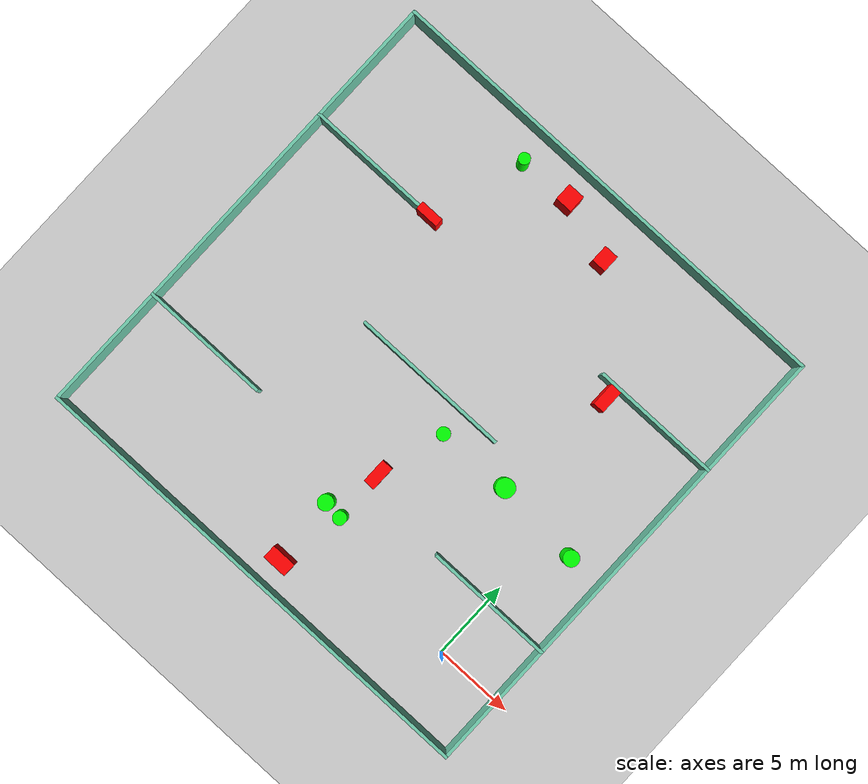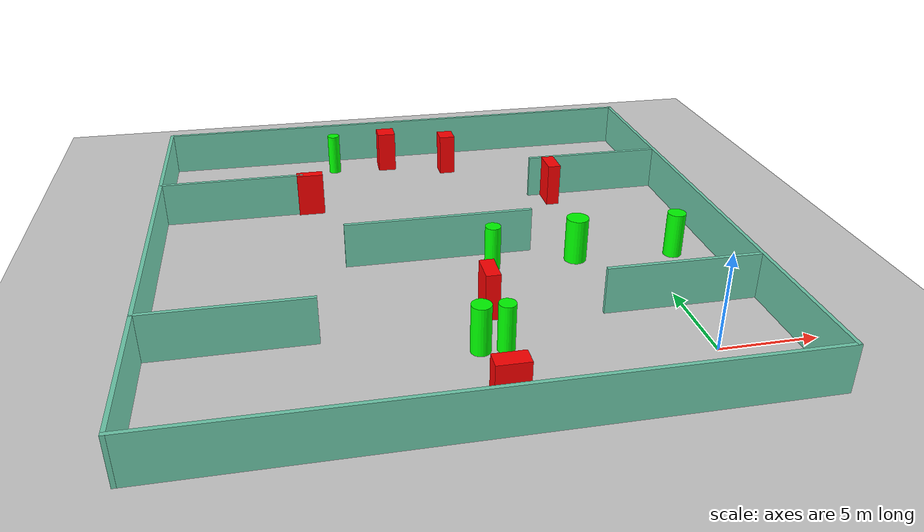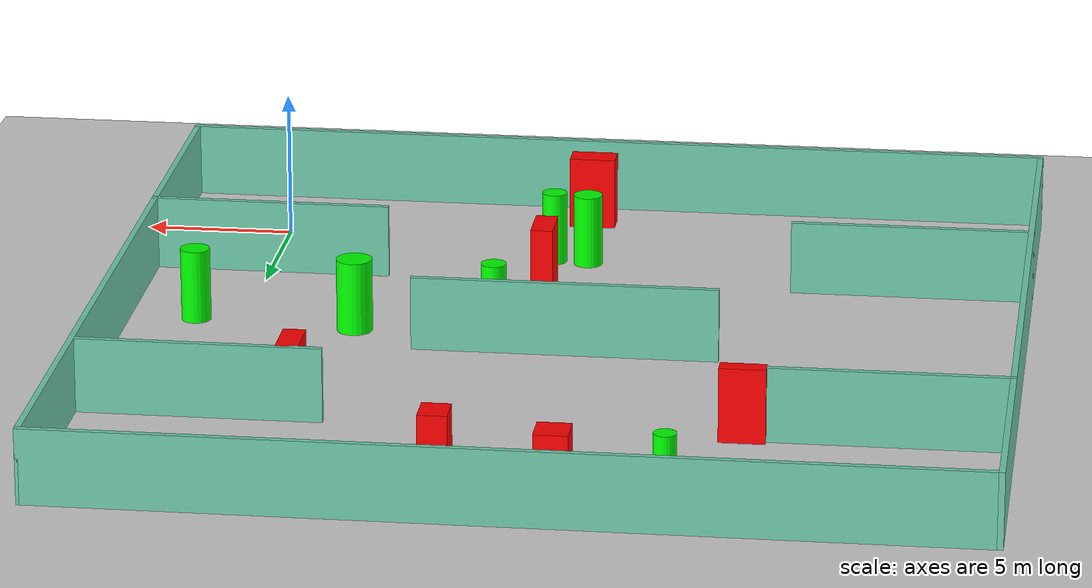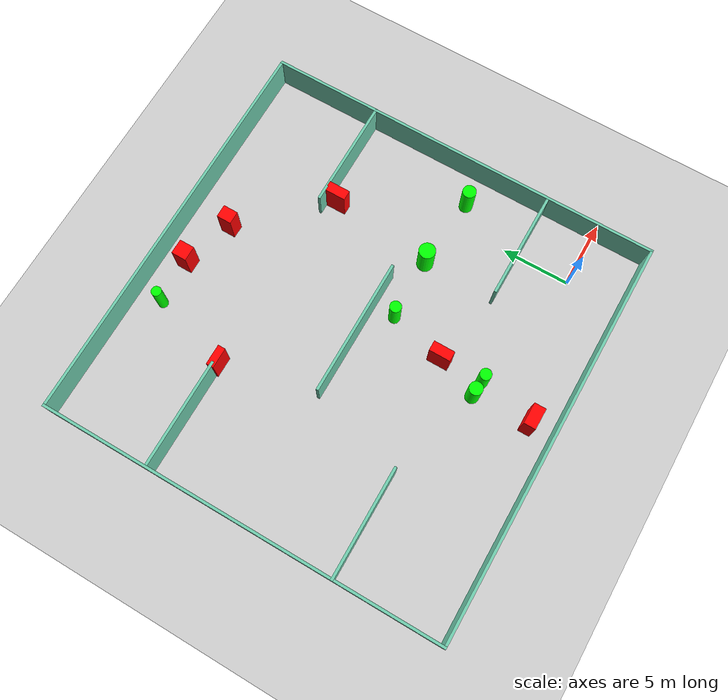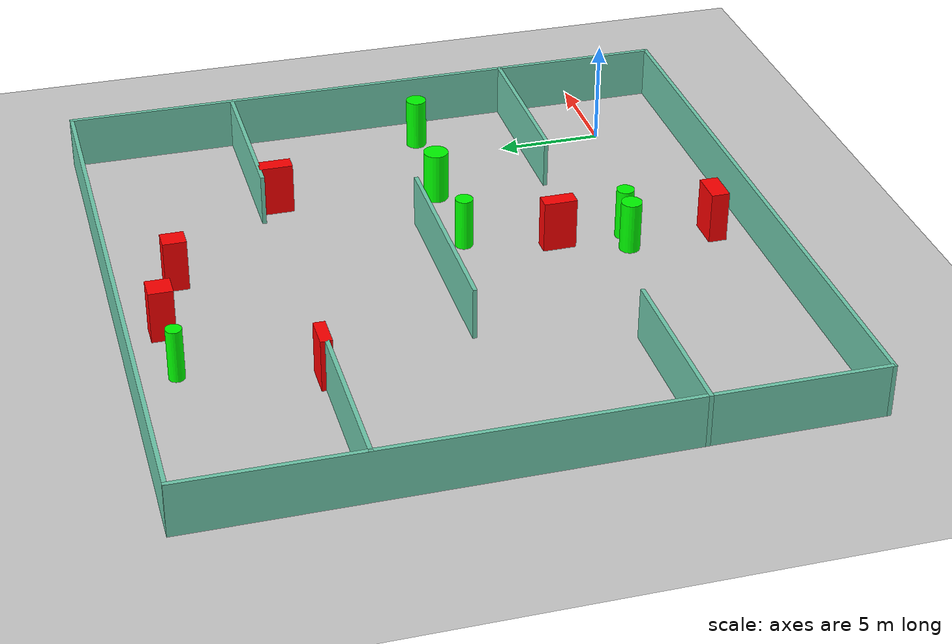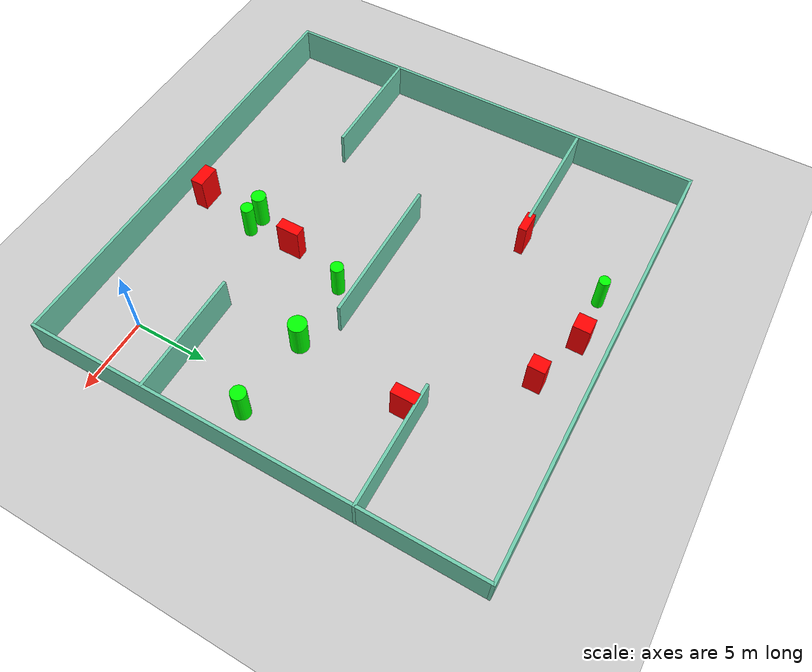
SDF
<sdf version="1.7">
 <world name="default">
  <light name="sun" type="directional">
   <pose>0 0 10 0 -0 0</pose>
   <diffuse>0.8 0.8 0.8 1</diffuse>
   <specular>0.2 0.2 0.2 1</specular>
   <attenuation>
    <range>1000</range>
    <constant>0.9</constant>
    <linear>0.01</linear>
    <quadratic>0.001</quadratic>
   </attenuation>
   <direction>-0.5 0.1 -0.9</direction>
   <spot><inner_angle>0</inner_angle><outer_angle>0</outer_angle><falloff>0</falloff></spot>
  </light>
  <model name="ground_plane">
   <static>1</static>
   <link name="link">
    <collision name="collision">
     <geometry><plane><normal>0 0 1</normal><size>100 100</size></plane></geometry>
     <surface>
      <contact><collide_bitmask>65535</collide_bitmask></contact>
      <friction><ode><mu>100</mu><mu2>50</mu2></ode></friction>
     </surface>
    </collision>
    <visual name="visual">
     <cast_shadows>0</cast_shadows>
     <geometry><plane><normal>0 0 1</normal><size>100 100</size></plane></geometry>
     <material>
      <script><uri>file://media/materials/scripts/gazebo.material</uri><name>Gazebo/Grey</name></script>
     </material>
    </visual>
   </link>
  </model>
  <gravity>0 0 -9.8</gravity>
  <magnetic_field>6e-06 2.3e-05 -4.2e-05</magnetic_field>
  <atmosphere type="adiabatic"/>
  <physics type="ode">
   <max_step_size>0.001</max_step_size>
   <real_time_factor>1</real_time_factor>
   <real_time_update_rate>1000</real_time_update_rate>
  </physics>
  <scene><ambient>0.4 0.4 0.4 1</ambient><background>0.7 0.7 0.7 1</background><shadows>1</shadows></scene>
  <spherical_coordinates>
   <surface_model>EARTH_WGS84</surface_model>
   <latitude_deg>0</latitude_deg>
   <longitude_deg>0</longitude_deg>
   <elevation>0</elevation>
   <heading_deg>0</heading_deg>
  </spherical_coordinates>
  <model name="my_base_walls">
   <link name="Wall_10">
    <collision name="Wall_10_Collision">
     <geometry><box><size>8.2 0.2 2.5</size></box></geometry>
     <pose>0 0 1.25 0 -0 0</pose>
    </collision>
    <visual name="Wall_10_Visual">
     <pose>0 0 1.25 0 -0 0</pose>
     <geometry><box><size>8.2 0.2 2.5</size></box></geometry>
     <material>
      <script><uri>file://media/materials/scripts/gazebo.material</uri><name>Gazebo/Grey</name></script>
      <ambient>0.435294 0.796078 0.67451 1</ambient>
     </material>
     <meta><layer>0</layer></meta>
    </visual>
    <pose>-11 -7 0 0 -0 0</pose>
   </link>
   <link name="Wall_12">
    <collision name="Wall_12_Collision">
     <geometry><box><size>8.2 0.2 2.5</size></box></geometry>
     <pose>0 0 1.25 0 -0 0</pose>
    </collision>
    <visual name="Wall_12_Visual">
     <pose>0 0 1.25 0 -0 0</pose>
     <geometry><box><size>8.2 0.2 2.5</size></box></geometry>
     <material>
      <script><uri>file://media/materials/scripts/gazebo.material</uri><name>Gazebo/Grey</name></script>
      <ambient>0.435294 0.796078 0.67451 1</ambient>
     </material>
     <meta><layer>0</layer></meta>
    </visual>
    <pose>-11 7 0 0 -0 0</pose>
   </link>
   <link name="Wall_14">
    <collision name="Wall_14_Collision">
     <geometry><box><size>8.2 0.2 2.5</size></box></geometry>
     <pose>0 0 1.25 0 -0 0</pose>
    </collision>
    <visual name="Wall_14_Visual">
     <pose>0 0 1.25 0 -0 0</pose>
     <geometry><box><size>8.2 0.2 2.5</size></box></geometry>
     <material>
      <script><uri>file://media/materials/scripts/gazebo.material</uri><name>Gazebo/Grey</name></script>
      <ambient>0.435294 0.796078 0.67451 1</ambient>
     </material>
     <meta><layer>0</layer></meta>
    </visual>
    <pose>11 7 0 0 -0 3.14159</pose>
   </link>
   <link name="Wall_16">
    <collision name="Wall_16_Collision">
     <geometry><box><size>10.2 0.2 2.5</size></box></geometry>
     <pose>0 0 1.25 0 -0 0</pose>
    </collision>
    <visual name="Wall_16_Visual">
     <pose>0 0 1.25 0 -0 0</pose>
     <geometry><box><size>10.2 0.2 2.5</size></box></geometry>
     <material>
      <script><uri>file://media/materials/scripts/gazebo.material</uri><name>Gazebo/Grey</name></script>
      <ambient>0.435294 0.796078 0.67451 1</ambient>
     </material>
     <meta><layer>0</layer></meta>
    </visual>
    <pose>0 0 0 0 -0 3.14159</pose>
   </link>
   <link name="Wall_2">
    <collision name="Wall_2_Collision">
     <geometry><box><size>30.2 0.2 2.5</size></box></geometry>
     <pose>0 0 1.25 0 -0 0</pose>
    </collision>
    <visual name="Wall_2_Visual">
     <pose>0 0 1.25 0 -0 0</pose>
     <geometry><box><size>30.2 0.2 2.5</size></box></geometry>
     <material>
      <script><uri>file://media/materials/scripts/gazebo.material</uri><name>Gazebo/Grey</name></script>
      <ambient>0.435294 0.796078 0.67451 1</ambient>
     </material>
     <meta><layer>0</layer></meta>
    </visual>
    <pose>0 -15 0 0 -0 3.14159</pose>
   </link>
   <link name="Wall_3">
    <collision name="Wall_3_Collision">
     <geometry><box><size>30.2 0.2 2.5</size></box></geometry>
     <pose>0 0 1.25 0 -0 0</pose>
    </collision>
    <visual name="Wall_3_Visual">
     <pose>0 0 1.25 0 -0 0</pose>
     <geometry><box><size>30.2 0.2 2.5</size></box></geometry>
     <material>
      <script><uri>file://media/materials/scripts/gazebo.material</uri><name>Gazebo/Grey</name></script>
      <ambient>0.435294 0.796078 0.67451 1</ambient>
     </material>
     <meta><layer>0</layer></meta>
    </visual>
    <pose>-15 0 0 0 -0 1.5708</pose>
   </link>
   <link name="Wall_4">
    <collision name="Wall_4_Collision">
     <geometry><box><size>30.2 0.2 2.5</size></box></geometry>
     <pose>0 0 1.25 0 -0 0</pose>
    </collision>
    <visual name="Wall_4_Visual">
     <pose>0 0 1.25 0 -0 0</pose>
     <geometry><box><size>30.2 0.2 2.5</size></box></geometry>
     <material>
      <script><uri>file://media/materials/scripts/gazebo.material</uri><name>Gazebo/Grey</name></script>
      <ambient>0.435294 0.796078 0.67451 1</ambient>
     </material>
     <meta><layer>0</layer></meta>
    </visual>
    <pose>0 15 0 0 -0 0</pose>
   </link>
   <link name="Wall_6">
    <collision name="Wall_6_Collision">
     <geometry><box><size>30.2 0.2 2.5</size></box></geometry>
     <pose>0 0 1.25 0 -0 0</pose>
    </collision>
    <visual name="Wall_6_Visual">
     <pose>0 0 1.25 0 -0 0</pose>
     <geometry><box><size>30.2 0.2 2.5</size></box></geometry>
     <material>
      <script><uri>file://media/materials/scripts/gazebo.material</uri><name>Gazebo/Grey</name></script>
      <ambient>0.435294 0.796078 0.67451 1</ambient>
     </material>
     <meta><layer>0</layer></meta>
    </visual>
    <pose>15 0 0 0 -0 1.5708</pose>
   </link>
   <link name="Wall_8">
    <collision name="Wall_8_Collision">
     <geometry><box><size>8.2 0.2 2.5</size></box></geometry>
     <pose>0 0 1.25 0 -0 0</pose>
    </collision>
    <visual name="Wall_8_Visual">
     <pose>0 0 1.25 0 -0 0</pose>
     <geometry><box><size>8.2 0.2 2.5</size></box></geometry>
     <material>
      <script><uri>file://media/materials/scripts/gazebo.material</uri><name>Gazebo/Grey</name></script>
      <ambient>0.435294 0.796078 0.67451 1</ambient>
     </material>
     <meta><layer>0</layer></meta>
    </visual>
    <pose>11 -7 0 0 -0 3.14159</pose>
   </link>
   <static>1</static>
   <pose>-11 11 0 0 -0 0</pose>
  </model>
  <model name="cylinder1">
   <static>1</static>
   <link name="link">
    <inertial>
     <mass>1</mass>
     <inertia><ixx>0.5</ixx><ixy>0</ixy><ixz>0</ixz><iyy>0.5</iyy><iyz>0</iyz><izz>1</izz></inertia>
    </inertial>
    <collision name="collision">
     <geometry><cylinder><radius>0.6009861860681142</radius><length>2.5</length></cylinder></geometry>
    </collision>
    <visual name="visual">
     <geometry><cylinder><radius>0.6009861860681142</radius><length>2.5</length></cylinder></geometry>
     <material>
      <ambient>0 1 0 1</ambient>
      <diffuse>0 1 0 1</diffuse>
      <specular>0.1 0.1 0.1 1</specular>
      <emissive>0 0 0 0</emissive>
     </material>
    </visual>
   </link>
   <pose>-3.7752721210502713 9.461799544404762 1.25 0 0 0</pose>
  </model>
  <model name="cylinder2">
   <static>1</static>
   <link name="link">
    <inertial>
     <mass>1</mass>
     <inertia><ixx>0.5</ixx><ixy>0</ixy><ixz>0</ixz><iyy>0.5</iyy><iyz>0</iyz><izz>1</izz></inertia>
    </inertial>
    <collision name="collision">
     <geometry><cylinder><radius>0.4953843859015595</radius><length>2.5</length></cylinder></geometry>
    </collision>
    <visual name="visual">
     <geometry><cylinder><radius>0.4953843859015595</radius><length>2.5</length></cylinder></geometry>
     <material>
      <ambient>0 1 0 1</ambient>
      <diffuse>0 1 0 1</diffuse>
      <specular>0.1 0.1 0.1 1</specular>
      <emissive>0 0 0 0</emissive>
     </material>
    </visual>
   </link>
   <pose>1.6662960348067983 9.044097746383313 1.25 0 0 0</pose>
  </model>
  <model name="cylinder3">
   <static>1</static>
   <link name="link">
    <inertial>
     <mass>1</mass>
     <inertia><ixx>0.5</ixx><ixy>0</ixy><ixz>0</ixz><iyy>0.5</iyy><iyz>0</iyz><izz>1</izz></inertia>
    </inertial>
    <collision name="collision">
     <geometry><cylinder><radius>0.3682248250685549</radius><length>2.5</length></cylinder></geometry>
    </collision>
    <visual name="visual">
     <geometry><cylinder><radius>0.3682248250685549</radius><length>2.5</length></cylinder></geometry>
     <material>
      <ambient>0 1 0 1</ambient>
      <diffuse>0 1 0 1</diffuse>
      <specular>0.1 0.1 0.1 1</specular>
      <emissive>0 0 0 0</emissive>
     </material>
    </visual>
   </link>
   <pose>-15.669259114177072 24.038810579084206 1.25 0 0 0</pose>
  </model>
  <model name="cylinder4">
   <static>1</static>
   <link name="link">
    <inertial>
     <mass>1</mass>
     <inertia><ixx>0.5</ixx><ixy>0</ixy><ixz>0</ixz><iyy>0.5</iyy><iyz>0</iyz><izz>1</izz></inertia>
    </inertial>
    <collision name="collision">
     <geometry><cylinder><radius>0.42295495727153093</radius><length>2.5</length></cylinder></geometry>
    </collision>
    <visual name="visual">
     <geometry><cylinder><radius>0.42295495727153093</radius><length>2.5</length></cylinder></geometry>
     <material>
      <ambient>0 1 0 1</ambient>
      <diffuse>0 1 0 1</diffuse>
      <specular>0.1 0.1 0.1 1</specular>
      <emissive>0 0 0 0</emissive>
     </material>
    </visual>
   </link>
   <pose>-9.556774173172567 1.8448768951740009 1.25 0 0 0</pose>
  </model>
  <model name="cylinder5">
   <static>1</static>
   <link name="link">
    <inertial>
     <mass>1</mass>
     <inertia><ixx>0.5</ixx><ixy>0</ixy><ixz>0</ixz><iyy>0.5</iyy><iyz>0</iyz><izz>1</izz></inertia>
    </inertial>
    <collision name="collision">
     <geometry><cylinder><radius>0.493283076905215</radius><length>2.5</length></cylinder></geometry>
    </collision>
    <visual name="visual">
     <geometry><cylinder><radius>0.493283076905215</radius><length>2.5</length></cylinder></geometry>
     <material>
      <ambient>0 1 0 1</ambient>
      <diffuse>0 1 0 1</diffuse>
      <specular>0.1 0.1 0.1 1</specular>
      <emissive>0 0 0 0</emissive>
     </material>
    </visual>
   </link>
   <pose>-10.729808253723649 1.9529860036333186 1.25 0 0 0</pose>
  </model>
  <model name="cylinder6">
   <static>1</static>
   <link name="link">
    <inertial>
     <mass>1</mass>
     <inertia><ixx>0.5</ixx><ixy>0</ixy><ixz>0</ixz><iyy>0.5</iyy><iyz>0</iyz><izz>1</izz></inertia>
    </inertial>
    <collision name="collision">
     <geometry><cylinder><radius>0.42455059810415274</radius><length>2.5</length></cylinder></geometry>
    </collision>
    <visual name="visual">
     <geometry><cylinder><radius>0.42455059810415274</radius><length>2.5</length></cylinder></geometry>
     <material>
      <ambient>0 1 0 1</ambient>
      <diffuse>0 1 0 1</diffuse>
      <specular>0.1 0.1 0.1 1</specular>
      <emissive>0 0 0 0</emissive>
     </material>
    </visual>
   </link>
   <pose>-8.437735079527808 9.348523342556815 1.25 0 0 0</pose>
  </model>
  <model name="box1">
   <static>1</static>
   <link name="link">
    <inertial>
     <mass>1</mass>
     <inertia><ixx>0.083</ixx><ixy>0</ixy><ixz>0</ixz><iyy>0.083</iyy><iyz>0</iyz><izz>0.083</izz></inertia>
    </inertial>
    <collision name="collision">
     <geometry><box><size>0.743457974613613 1.582021082994247 2.5</size></box></geometry>
    </collision>
    <visual name="visual">
     <geometry><box><size>0.743457974613613 1.582021082994247 2.5</size></box></geometry>
     <material>
      <ambient>1 0 0 1</ambient>
      <diffuse>1 0 0 1</diffuse>
      <specular>0.1 0.1 0.1 1</specular>
      <emissive>0 0 0 0</emissive>
     </material>
    </visual>
    <sensor name="my_contact" type="contact">
     <contact><collision>box_collision</collision><topic>__default_topic__</topic></contact>
    </sensor>
   </link>
   <pose>-2.955083375375718 17.180469481761424 1.25 0 0 0</pose>
  </model>
  <model name="box2">
   <static>1</static>
   <link name="link">
    <inertial>
     <mass>1</mass>
     <inertia><ixx>0.083</ixx><ixy>0</ixy><ixz>0</ixz><iyy>0.083</iyy><iyz>0</iyz><izz>0.083</izz></inertia>
    </inertial>
    <collision name="collision">
     <geometry><box><size>1.5803950576834311 0.8717609457487971 2.5</size></box></geometry>
    </collision>
    <visual name="visual">
     <geometry><box><size>1.5803950576834311 0.8717609457487971 2.5</size></box></geometry>
     <material>
      <ambient>1 0 0 1</ambient>
      <diffuse>1 0 0 1</diffuse>
      <specular>0.1 0.1 0.1 1</specular>
      <emissive>0 0 0 0</emissive>
     </material>
    </visual>
    <sensor name="my_contact" type="contact">
     <contact><collision>box_collision</collision><topic>__default_topic__</topic></contact>
    </sensor>
   </link>
   <pose>-10.434345728614737 -2.2551142567341107 1.25 0 0 0</pose>
  </model>
  <model name="box3">
   <static>1</static>
   <link name="link">
    <inertial>
     <mass>1</mass>
     <inertia><ixx>0.083</ixx><ixy>0</ixy><ixz>0</ixz><iyy>0.083</iyy><iyz>0</iyz><izz>0.083</izz></inertia>
    </inertial>
    <collision name="collision">
     <geometry><box><size>1.5057706716549695 0.5478055393596752 2.5</size></box></geometry>
    </collision>
    <visual name="visual">
     <geometry><box><size>1.5057706716549695 0.5478055393596752 2.5</size></box></geometry>
     <material>
      <ambient>1 0 0 1</ambient>
      <diffuse>1 0 0 1</diffuse>
      <specular>0.1 0.1 0.1 1</specular>
      <emissive>0 0 0 0</emissive>
     </material>
    </visual>
    <sensor name="my_contact" type="contact">
     <contact><collision>box_collision</collision><topic>__default_topic__</topic></contact>
    </sensor>
   </link>
   <pose>-17.514117968132872 18.03579161514477 1.25 0 0 0</pose>
  </model>
  <model name="box4">
   <static>1</static>
   <link name="link">
    <inertial>
     <mass>1</mass>
     <inertia><ixx>0.083</ixx><ixy>0</ixy><ixz>0</ixz><iyy>0.083</iyy><iyz>0</iyz><izz>0.083</izz></inertia>
    </inertial>
    <collision name="collision">
     <geometry><box><size>0.7479245532018387 1.5862496827332166 2.5</size></box></geometry>
    </collision>
    <visual name="visual">
     <geometry><box><size>0.7479245532018387 1.5862496827332166 2.5</size></box></geometry>
     <material>
      <ambient>1 0 0 1</ambient>
      <diffuse>1 0 0 1</diffuse>
      <specular>0.1 0.1 0.1 1</specular>
      <emissive>0 0 0 0</emissive>
     </material>
    </visual>
    <sensor name="my_contact" type="contact">
     <contact><collision>box_collision</collision><topic>__default_topic__</topic></contact>
    </sensor>
   </link>
   <pose>-9.603033279128692 5.128608483166282 1.25 0 0 0</pose>
  </model>
  <model name="box5">
   <static>1</static>
   <link name="link">
    <inertial>
     <mass>1</mass>
     <inertia><ixx>0.083</ixx><ixy>0</ixy><ixz>0</ixz><iyy>0.083</iyy><iyz>0</iyz><izz>0.083</izz></inertia>
    </inertial>
    <collision name="collision">
     <geometry><box><size>1.097863171294427 1.121198890428987 2.5</size></box></geometry>
    </collision>
    <visual name="visual">
     <geometry><box><size>1.097863171294427 1.121198890428987 2.5</size></box></geometry>
     <material>
      <ambient>1 0 0 1</ambient>
      <diffuse>1 0 0 1</diffuse>
      <specular>0.1 0.1 0.1 1</specular>
      <emissive>0 0 0 0</emissive>
     </material>
    </visual>
    <sensor name="my_contact" type="contact">
     <contact><collision>box_collision</collision><topic>__default_topic__</topic></contact>
    </sensor>
   </link>
   <pose>-12.231357266842679 24.139498113760112 1.25 0 0 0</pose>
  </model>
  <model name="box6">
   <static>1</static>
   <link name="link">
    <inertial>
     <mass>1</mass>
     <inertia><ixx>0.083</ixx><ixy>0</ixy><ixz>0</ixz><iyy>0.083</iyy><iyz>0</iyz><izz>0.083</izz></inertia>
    </inertial>
    <collision name="collision">
     <geometry><box><size>0.9445634897072559 1.1014066844371158 2.5</size></box></geometry>
    </collision>
    <visual name="visual">
     <geometry><box><size>0.9445634897072559 1.1014066844371158 2.5</size></box></geometry>
     <material>
      <ambient>1 0 0 1</ambient>
      <diffuse>1 0 0 1</diffuse>
      <specular>0.1 0.1 0.1 1</specular>
      <emissive>0 0 0 0</emissive>
     </material>
    </visual>
    <sensor name="my_contact" type="contact">
     <contact><collision>box_collision</collision><topic>__default_topic__</topic></contact>
    </sensor>
   </link>
   <pose>-8.411028617462492 22.923133225563543 1.25 0 0 0</pose>
  </model>
 </world>
</sdf>
